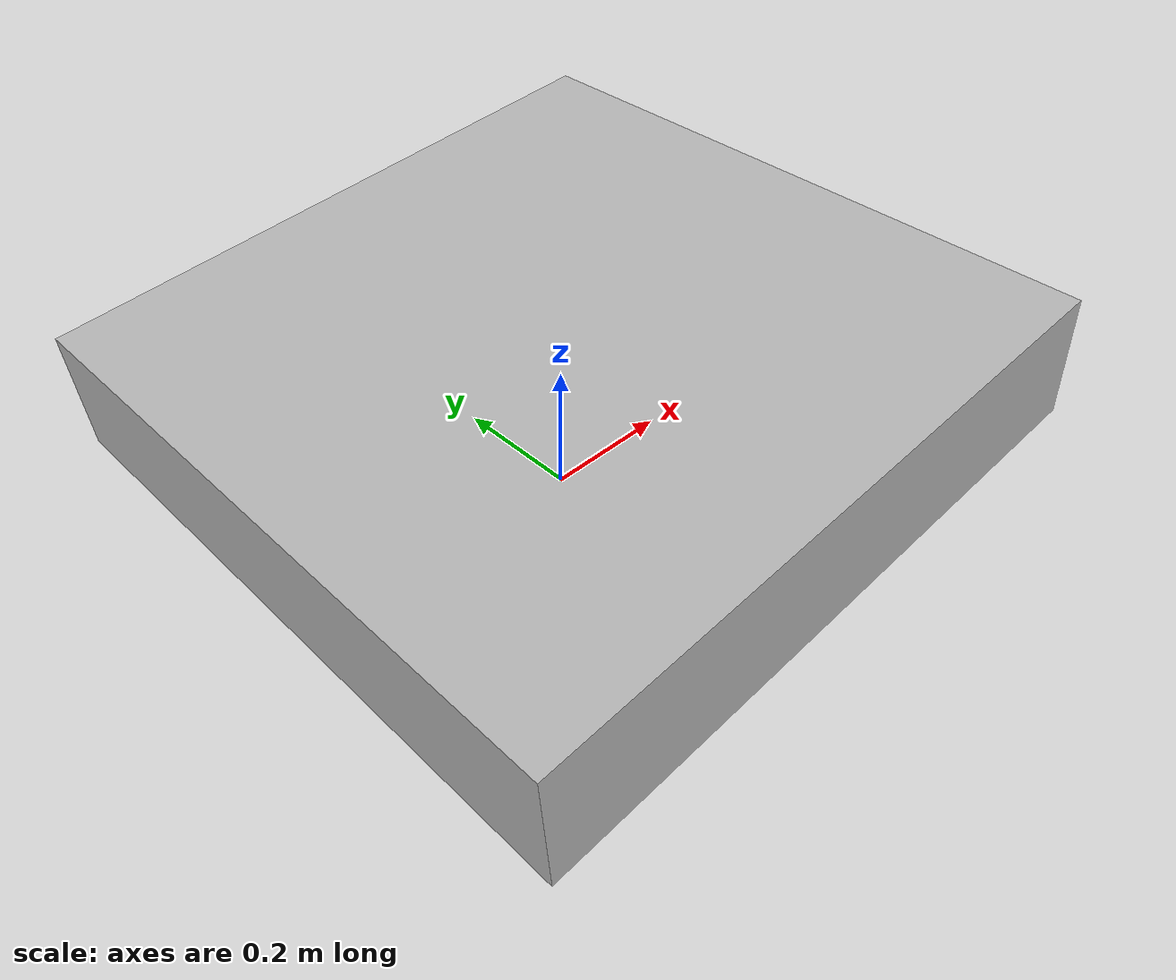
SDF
<?xml version='1.0'?>
<sdf version="1.5">
    <model name='box'>
        <static>true</static>
      <pose>0.0 0 0.2 0 -0.09 0</pose>
      <link name='link'>
        <inertial>
          <mass>1</mass>
          <inertia>
            <ixx>0.166667</ixx>
            <ixy>0</ixy>
            <ixz>0</ixz>
            <iyy>0.166667</iyy>
            <iyz>0</iyz>
            <izz>0.166667</izz>
          </inertia>
        </inertial>
        <collision name='collision'>
          <geometry>
            <box>
              <size>1 1 0.2</size>
            </box>
          </geometry>
          <max_contacts>10</max_contacts>
          <surface>
            <contact>
              <ode/>
            </contact>
            <bounce/>
            <friction>
              <ode/>
            </friction>
          </surface>
        </collision>
        <visual name='visual'>
          <geometry>
            <box>
              <size>1 1 0.2</size>
            </box>
          </geometry>
        </visual>
        <self_collide>0</self_collide>
        <kinematic>0</kinematic>
        <gravity>1</gravity>
      </link>
    </model>
</sdf>
